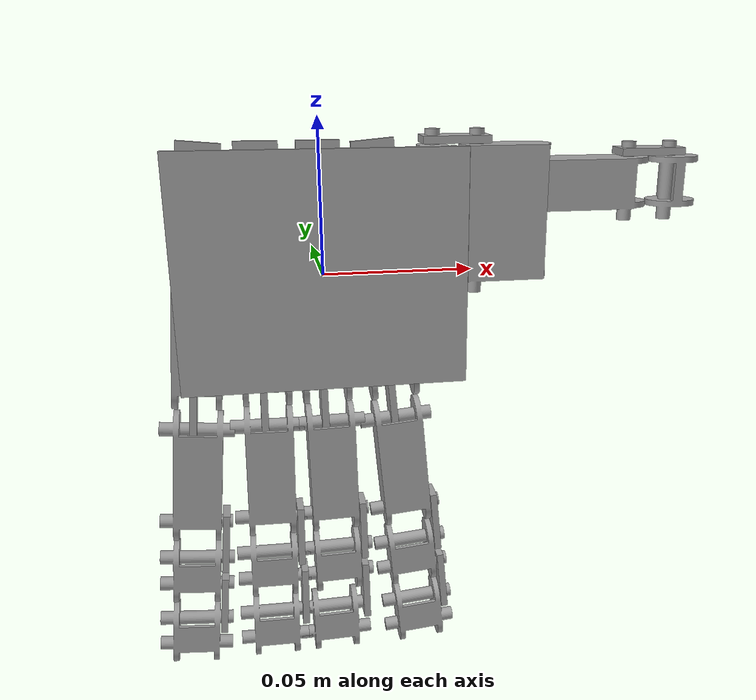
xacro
<?xml version="1.0" ?>
<robot name="hand_final" xmlns:xacro="http://www.ros.org/wiki/xacro">

<xacro:include filename="$(find hand_final_description)/urdf/materials.xacro" />
<xacro:include filename="$(find hand_final_description)/urdf/hand_final.trans" />
<xacro:include filename="$(find hand_final_description)/urdf/hand_final.gazebo" />
<link name="base_link">
  <inertial>
    <origin rpy="0 0 0" xyz="0.0 0.001 0.0"/>
    <mass value="0.123088"/>
    <inertia ixx="6.6e-05" ixy="0.0" ixz="0.0" iyy="0.000164" iyz="-0.0" izz="9.9e-05"/>
  </inertial>
  <visual>
    <origin rpy="0 0 0" xyz="0 0 0"/>
    <geometry>
      <mesh filename="package://hand_final_description/meshes/base_link.stl" scale="0.001 0.001 0.001"/>
    </geometry>
    <material name="steel_satin"/>
  </visual>
  <collision>
    <origin rpy="0 0 0" xyz="0 0 0"/>
    <geometry>
      <mesh filename="package://hand_final_description/meshes/base_link.stl" scale="0.001 0.001 0.001"/>
    </geometry>
  </collision>
</link>

<link name="s_mcp_yaw_link_v1_1">
  <inertial>
    <origin rpy="0 0 0" xyz="-4.6768596833245135e-05 0.0012359787607253239 -0.0005345675075667244"/>
    <mass value="0.011430485562037091"/>
    <inertia ixx="2e-06" ixy="0.0" ixz="-0.0" iyy="3e-06" iyz="0.0" izz="0.0"/>
  </inertial>
  <visual>
    <origin rpy="0 0 0" xyz="0.039 -0.002 -0.0175"/>
    <geometry>
      <mesh filename="package://hand_final_description/meshes/s_mcp_yaw_link_v1_1.stl" scale="0.001 0.001 0.001"/>
    </geometry>
    <material name="steel_satin"/>
  </visual>
  <collision>
    <origin rpy="0 0 0" xyz="0.039 -0.002 -0.0175"/>
    <geometry>
      <mesh filename="package://hand_final_description/meshes/s_mcp_yaw_link_v1_1.stl" scale="0.001 0.001 0.001"/>
    </geometry>
  </collision>
</link>

<link name="s_mcp_pitch_link_v1_1">
  <inertial>
    <origin rpy="0 0 0" xyz="-0.04274093891233175 0.007616616913173875 0.017740872570661995"/>
    <mass value="0.028244047864773934"/>
    <inertia ixx="6e-06" ixy="0.0" ixz="-0.0" iyy="6e-06" iyz="0.0" izz="2e-06"/>
  </inertial>
  <visual>
    <origin rpy="0 0 0" xyz="-0.0 -0.002 0.043"/>
    <geometry>
      <mesh filename="package://hand_final_description/meshes/s_mcp_pitch_link_v1_1.stl" scale="0.001 0.001 0.001"/>
    </geometry>
    <material name="steel_satin"/>
  </visual>
  <collision>
    <origin rpy="0 0 0" xyz="-0.0 -0.002 0.043"/>
    <geometry>
      <mesh filename="package://hand_final_description/meshes/s_mcp_pitch_link_v1_1.stl" scale="0.001 0.001 0.001"/>
    </geometry>
  </collision>
</link>

<link name="connector_v1_1">
  <inertial>
    <origin rpy="0 0 0" xyz="-0.0460411002627318 0.004250000000000006 -0.00563800271492397"/>
    <mass value="0.00374307805216622"/>
    <inertia ixx="0.0" ixy="0.0" ixz="-0.0" iyy="0.0" iyz="0.0" izz="0.0"/>
  </inertial>
  <visual>
    <origin rpy="0 0 0" xyz="-0.0 -0.007 0.043"/>
    <geometry>
      <mesh filename="package://hand_final_description/meshes/connector_v1_1.stl" scale="0.001 0.001 0.001"/>
    </geometry>
    <material name="steel_satin"/>
  </visual>
  <collision>
    <origin rpy="0 0 0" xyz="-0.0 -0.007 0.043"/>
    <geometry>
      <mesh filename="package://hand_final_description/meshes/connector_v1_1.stl" scale="0.001 0.001 0.001"/>
    </geometry>
  </collision>
</link>

<link name="s_pip_pitch_link_v1_1">
  <inertial>
    <origin rpy="0 0 0" xyz="-0.0011870146943421048 -0.0010075159640330691 -0.017965272866855432"/>
    <mass value="0.03418494281236667"/>
    <inertia ixx="8e-06" ixy="0.0" ixz="-0.0" iyy="9e-06" iyz="-0.0" izz="2e-06"/>
  </inertial>
  <visual>
    <origin rpy="0 0 0" xyz="0.04545 -0.01125 0.056218"/>
    <geometry>
      <mesh filename="package://hand_final_description/meshes/s_pip_pitch_link_v1_1.stl" scale="0.001 0.001 0.001"/>
    </geometry>
    <material name="steel_satin"/>
  </visual>
  <collision>
    <origin rpy="0 0 0" xyz="0.04545 -0.01125 0.056218"/>
    <geometry>
      <mesh filename="package://hand_final_description/meshes/s_pip_pitch_link_v1_1.stl" scale="0.001 0.001 0.001"/>
    </geometry>
  </collision>
</link>

<link name="connector_v1_2">
  <inertial>
    <origin rpy="0 0 0" xyz="-0.03803170676576143 0.004250000000000058 -0.057489801230574816"/>
    <mass value="0.00374307805216622"/>
    <inertia ixx="0.0" ixy="-0.0" ixz="-0.0" iyy="0.0" iyz="-0.0" izz="0.0"/>
  </inertial>
  <visual>
    <origin rpy="0 0 0" xyz="0.0005 -0.007 0.043"/>
    <geometry>
      <mesh filename="package://hand_final_description/meshes/connector_v1_2.stl" scale="0.001 0.001 0.001"/>
    </geometry>
    <material name="steel_satin"/>
  </visual>
  <collision>
    <origin rpy="0 0 0" xyz="0.0005 -0.007 0.043"/>
    <geometry>
      <mesh filename="package://hand_final_description/meshes/connector_v1_2.stl" scale="0.001 0.001 0.001"/>
    </geometry>
  </collision>
</link>

<link name="s_dip_link_v1_1">
  <inertial>
    <origin rpy="0 0 0" xyz="-0.011935747474570657 -0.0005341031947518112 -0.004476997951630715"/>
    <mass value="0.019676387057467354"/>
    <inertia ixx="1e-06" ixy="0.0" ixz="0.0" iyy="2e-06" iyz="0.0" izz="1e-06"/>
  </inertial>
  <visual>
    <origin rpy="0 0 0" xyz="0.03794 -0.01125 0.10807"/>
    <geometry>
      <mesh filename="package://hand_final_description/meshes/s_dip_link_v1_1.stl" scale="0.001 0.001 0.001"/>
    </geometry>
    <material name="steel_satin"/>
  </visual>
  <collision>
    <origin rpy="0 0 0" xyz="0.03794 -0.01125 0.10807"/>
    <geometry>
      <mesh filename="package://hand_final_description/meshes/s_dip_link_v1_1.stl" scale="0.001 0.001 0.001"/>
    </geometry>
  </collision>
</link>

<link name="connector_v1_3">
  <inertial>
    <origin rpy="0 0 0" xyz="-0.04079775607720053 0.004250000000000064 -0.1153908633809602"/>
    <mass value="0.00374307805216622"/>
    <inertia ixx="0.0" ixy="0.0" ixz="-0.0" iyy="0.0" iyz="0.0" izz="0.0"/>
  </inertial>
  <visual>
    <origin rpy="0 0 0" xyz="-0.0 -0.007 0.011"/>
    <geometry>
      <mesh filename="package://hand_final_description/meshes/connector_v1_3.stl" scale="0.001 0.001 0.001"/>
    </geometry>
    <material name="steel_satin"/>
  </visual>
  <collision>
    <origin rpy="0 0 0" xyz="-0.0 -0.007 0.011"/>
    <geometry>
      <mesh filename="package://hand_final_description/meshes/connector_v1_3.stl" scale="0.001 0.001 0.001"/>
    </geometry>
  </collision>
</link>

<link name="s_tip_link_v1_1">
  <inertial>
    <origin rpy="0 0 0" xyz="-0.011935796786009763 -0.0005341031947518338 -0.004477060102016067"/>
    <mass value="0.019676387057467354"/>
    <inertia ixx="1e-06" ixy="0.0" ixz="0.0" iyy="2e-06" iyz="0.0" izz="1e-06"/>
  </inertial>
  <visual>
    <origin rpy="0 0 0" xyz="0.040206 -0.01125 0.133971"/>
    <geometry>
      <mesh filename="package://hand_final_description/meshes/s_tip_link_v1_1.stl" scale="0.001 0.001 0.001"/>
    </geometry>
    <material name="steel_satin"/>
  </visual>
  <collision>
    <origin rpy="0 0 0" xyz="0.040206 -0.01125 0.133971"/>
    <geometry>
      <mesh filename="package://hand_final_description/meshes/s_tip_link_v1_1.stl" scale="0.001 0.001 0.001"/>
    </geometry>
  </collision>
</link>

<link name="cmc_link_v4_1">
  <inertial>
    <origin rpy="0 0 0" xyz="-0.00048645427795625945 0.004769447524329839 6.493517695750628e-06"/>
    <mass value="0.018416700517789007"/>
    <inertia ixx="5e-06" ixy="0.0" ixz="-0.0" iyy="5e-06" iyz="-0.0" izz="0.0"/>
  </inertial>
  <visual>
    <origin rpy="0 0 0" xyz="-0.039 -0.002 -0.0175"/>
    <geometry>
      <mesh filename="package://hand_final_description/meshes/cmc_link_v4_1.stl" scale="0.001 0.001 0.001"/>
    </geometry>
    <material name="steel_satin"/>
  </visual>
  <collision>
    <origin rpy="0 0 0" xyz="-0.039 -0.002 -0.0175"/>
    <geometry>
      <mesh filename="package://hand_final_description/meshes/cmc_link_v4_1.stl" scale="0.001 0.001 0.001"/>
    </geometry>
  </collision>
</link>

<link name="t_connector_1_v1_1">
  <inertial>
    <origin rpy="0 0 0" xyz="0.007499999970143861 1.3128640535819969e-11 0.024250000000000008"/>
    <mass value="0.00374307805216622"/>
    <inertia ixx="0.0" ixy="0.0" ixz="0.0" iyy="0.0" iyz="-0.0" izz="0.0"/>
  </inertial>
  <visual>
    <origin rpy="0 0 0" xyz="-0.03825 -0.009 -0.0175"/>
    <geometry>
      <mesh filename="package://hand_final_description/meshes/t_connector_1_v1_1.stl" scale="0.001 0.001 0.001"/>
    </geometry>
    <material name="steel_satin"/>
  </visual>
  <collision>
    <origin rpy="0 0 0" xyz="-0.03825 -0.009 -0.0175"/>
    <geometry>
      <mesh filename="package://hand_final_description/meshes/t_connector_1_v1_1.stl" scale="0.001 0.001 0.001"/>
    </geometry>
  </collision>
</link>

<link name="t_mcp_v5_1">
  <inertial>
    <origin rpy="0 0 0" xyz="0.007807400362975288 -0.0029362898569624957 -0.025333866891557685"/>
    <mass value="0.03943050014537036"/>
    <inertia ixx="1.1e-05" ixy="0.0" ixz="-0.0" iyy="1.3e-05" iyz="-0.0" izz="3e-06"/>
  </inertial>
  <visual>
    <origin rpy="0 0 0" xyz="-0.05325 -0.009 -0.043"/>
    <geometry>
      <mesh filename="package://hand_final_description/meshes/t_mcp_v5_1.stl" scale="0.001 0.001 0.001"/>
    </geometry>
    <material name="steel_satin"/>
  </visual>
  <collision>
    <origin rpy="0 0 0" xyz="-0.05325 -0.009 -0.043"/>
    <geometry>
      <mesh filename="package://hand_final_description/meshes/t_mcp_v5_1.stl" scale="0.001 0.001 0.001"/>
    </geometry>
  </collision>
</link>

<link name="t_pip_link_v5_1">
  <inertial>
    <origin rpy="0 0 0" xyz="0.08450315797168514 0.009190616814845145 0.017499999999997472"/>
    <mass value="0.03216718051096679"/>
    <inertia ixx="2e-06" ixy="-1e-06" ixz="-0.0" iyy="7e-06" iyz="-0.0" izz="6e-06"/>
  </inertial>
  <visual>
    <origin rpy="0 0 0" xyz="-0.01 -0.002 -0.0085"/>
    <geometry>
      <mesh filename="package://hand_final_description/meshes/t_pip_link_v5_1.stl" scale="0.001 0.001 0.001"/>
    </geometry>
    <material name="steel_satin"/>
  </visual>
  <collision>
    <origin rpy="0 0 0" xyz="-0.01 -0.002 -0.0085"/>
    <geometry>
      <mesh filename="package://hand_final_description/meshes/t_pip_link_v5_1.stl" scale="0.001 0.001 0.001"/>
    </geometry>
  </collision>
</link>

<link name="t_connector_2_v1_1">
  <inertial>
    <origin rpy="0 0 0" xyz="0.11644669926025636 0.004946699154229534 0.050749999999999997"/>
    <mass value="0.00374307805216622"/>
    <inertia ixx="0.0" ixy="0.0" ixz="0.0" iyy="0.0" iyz="-0.0" izz="0.0"/>
  </inertial>
  <visual>
    <origin rpy="0 0 0" xyz="-0.0 -0.009 0.0145"/>
    <geometry>
      <mesh filename="package://hand_final_description/meshes/t_connector_2_v1_1.stl" scale="0.001 0.001 0.001"/>
    </geometry>
    <material name="steel_satin"/>
  </visual>
  <collision>
    <origin rpy="0 0 0" xyz="-0.0 -0.009 0.0145"/>
    <geometry>
      <mesh filename="package://hand_final_description/meshes/t_connector_2_v1_1.stl" scale="0.001 0.001 0.001"/>
    </geometry>
  </collision>
</link>

<link name="t_tip_v2_1">
  <inertial>
    <origin rpy="0 0 0" xyz="0.0011409398218715228 -5.272418504998627e-07 -0.011500000000000003"/>
    <mass value="0.011962131611831003"/>
    <inertia ixx="1e-06" ixy="-0.0" ixz="0.0" iyy="1e-06" iyz="-0.0" izz="0.0"/>
  </inertial>
  <visual>
    <origin rpy="0 0 0" xyz="-0.123947 -0.013947 -0.0375"/>
    <geometry>
      <mesh filename="package://hand_final_description/meshes/t_tip_v2_1.stl" scale="0.001 0.001 0.001"/>
    </geometry>
    <material name="steel_satin"/>
  </visual>
  <collision>
    <origin rpy="0 0 0" xyz="-0.123947 -0.013947 -0.0375"/>
    <geometry>
      <mesh filename="package://hand_final_description/meshes/t_tip_v2_1.stl" scale="0.001 0.001 0.001"/>
    </geometry>
  </collision>
</link>

<link name="r_mcp_yaw_link_v1_1">
  <inertial>
    <origin rpy="0 0 0" xyz="-3.17280923756158e-14 0.001235978760725326 -0.0005366094686043502"/>
    <mass value="0.011430485562037091"/>
    <inertia ixx="2e-06" ixy="0.0" ixz="-0.0" iyy="3e-06" iyz="0.0" izz="0.0"/>
  </inertial>
  <visual>
    <origin rpy="0 0 0" xyz="0.0195 -0.002 -0.0175"/>
    <geometry>
      <mesh filename="package://hand_final_description/meshes/r_mcp_yaw_link_v1_1.stl" scale="0.001 0.001 0.001"/>
    </geometry>
    <material name="steel_satin"/>
  </visual>
  <collision>
    <origin rpy="0 0 0" xyz="0.0195 -0.002 -0.0175"/>
    <geometry>
      <mesh filename="package://hand_final_description/meshes/r_mcp_yaw_link_v1_1.stl" scale="0.001 0.001 0.001"/>
    </geometry>
  </collision>
</link>

<link name="r_mcp_pitch_link_v1_1">
  <inertial>
    <origin rpy="0 0 0" xyz="-0.01993495690744278 0.007866616913173878 0.017581335461812227"/>
    <mass value="0.028244047864773934"/>
    <inertia ixx="6e-06" ixy="0.0" ixz="-0.0" iyy="6e-06" iyz="0.0" izz="2e-06"/>
  </inertial>
  <visual>
    <origin rpy="0 0 0" xyz="-0.0 -0.002 0.043"/>
    <geometry>
      <mesh filename="package://hand_final_description/meshes/r_mcp_pitch_link_v1_1.stl" scale="0.001 0.001 0.001"/>
    </geometry>
    <material name="steel_satin"/>
  </visual>
  <collision>
    <origin rpy="0 0 0" xyz="-0.0 -0.002 0.043"/>
    <geometry>
      <mesh filename="package://hand_final_description/meshes/r_mcp_pitch_link_v1_1.stl" scale="0.001 0.001 0.001"/>
    </geometry>
  </collision>
</link>

<link name="r_connector_1_v1_1">
  <inertial>
    <origin rpy="0 0 0" xyz="-0.0215962513306326 0.004500000000000008 -0.005970797677186772"/>
    <mass value="0.00374307805216622"/>
    <inertia ixx="0.0" ixy="0.0" ixz="-0.0" iyy="0.0" iyz="0.0" izz="0.0"/>
  </inertial>
  <visual>
    <origin rpy="0 0 0" xyz="-0.0 -0.007 0.043"/>
    <geometry>
      <mesh filename="package://hand_final_description/meshes/r_connector_1_v1_1.stl" scale="0.001 0.001 0.001"/>
    </geometry>
    <material name="steel_satin"/>
  </visual>
  <collision>
    <origin rpy="0 0 0" xyz="-0.0 -0.007 0.043"/>
    <geometry>
      <mesh filename="package://hand_final_description/meshes/r_connector_1_v1_1.stl" scale="0.001 0.001 0.001"/>
    </geometry>
  </collision>
</link>

<link name="r_pip_pitch_link_v1_1">
  <inertial>
    <origin rpy="0 0 0" xyz="-0.00043169002557639363 -0.0010075159640330796 -0.017995683521112665"/>
    <mass value="0.03418494281236667"/>
    <inertia ixx="8e-06" ixy="0.0" ixz="-0.0" iyy="9e-06" iyz="-0.0" izz="2e-06"/>
  </inertial>
  <visual>
    <origin rpy="0 0 0" xyz="0.020477 -0.0115 0.056491"/>
    <geometry>
      <mesh filename="package://hand_final_description/meshes/r_pip_pitch_link_v1_1.stl" scale="0.001 0.001 0.001"/>
    </geometry>
    <material name="steel_satin"/>
  </visual>
  <collision>
    <origin rpy="0 0 0" xyz="0.020477 -0.0115 0.056491"/>
    <geometry>
      <mesh filename="package://hand_final_description/meshes/r_pip_pitch_link_v1_1.stl" scale="0.001 0.001 0.001"/>
    </geometry>
  </collision>
</link>

<link name="r_connector_2_v1_1">
  <inertial>
    <origin rpy="0 0 0" xyz="-0.010488075564635466 0.0045000000000000205 -0.05716373280419147"/>
    <mass value="0.00374307805216622"/>
    <inertia ixx="0.0" ixy="0.0" ixz="-0.0" iyy="0.0" iyz="0.0" izz="0.0"/>
  </inertial>
  <visual>
    <origin rpy="0 0 0" xyz="0.0005 -0.007 0.043"/>
    <geometry>
      <mesh filename="package://hand_final_description/meshes/r_connector_2_v1_1.stl" scale="0.001 0.001 0.001"/>
    </geometry>
    <material name="steel_satin"/>
  </visual>
  <collision>
    <origin rpy="0 0 0" xyz="0.0005 -0.007 0.043"/>
    <geometry>
      <mesh filename="package://hand_final_description/meshes/r_connector_2_v1_1.stl" scale="0.001 0.001 0.001"/>
    </geometry>
  </collision>
</link>

<link name="r_dip_link_v1_1">
  <inertial>
    <origin rpy="0 0 0" xyz="-0.011594415233927399 -0.0005341031947518234 -0.005298879077883789"/>
    <mass value="0.019676387057467354"/>
    <inertia ixx="1e-06" ixy="0.0" ixz="0.0" iyy="2e-06" iyz="0.0" izz="1e-06"/>
  </inertial>
  <visual>
    <origin rpy="0 0 0" xyz="0.009869 -0.0115 0.107684"/>
    <geometry>
      <mesh filename="package://hand_final_description/meshes/r_dip_link_v1_1.stl" scale="0.001 0.001 0.001"/>
    </geometry>
    <material name="steel_satin"/>
  </visual>
  <collision>
    <origin rpy="0 0 0" xyz="0.009869 -0.0115 0.107684"/>
    <geometry>
      <mesh filename="package://hand_final_description/meshes/r_dip_link_v1_1.stl" scale="0.001 0.001 0.001"/>
    </geometry>
  </collision>
</link>

<link name="r_connector_3_v1_1">
  <inertial>
    <origin rpy="0 0 0" xyz="-0.010441990436848396 0.004500000000000052 -0.11517722528469497"/>
    <mass value="0.00374307805216622"/>
    <inertia ixx="0.0" ixy="0.0" ixz="-0.0" iyy="0.0" iyz="0.0" izz="0.0"/>
  </inertial>
  <visual>
    <origin rpy="0 0 0" xyz="-0.0 -0.007 0.011"/>
    <geometry>
      <mesh filename="package://hand_final_description/meshes/r_connector_3_v1_1.stl" scale="0.001 0.001 0.001"/>
    </geometry>
    <material name="steel_satin"/>
  </visual>
  <collision>
    <origin rpy="0 0 0" xyz="-0.0 -0.007 0.011"/>
    <geometry>
      <mesh filename="package://hand_final_description/meshes/r_connector_3_v1_1.stl" scale="0.001 0.001 0.001"/>
    </geometry>
  </collision>
</link>

<link name="r_tip_link_v1_1">
  <inertial>
    <origin rpy="0 0 0" xyz="-0.012594177801296734 -0.0005341031947518095 -0.00528091915194992"/>
    <mass value="0.019676387057467354"/>
    <inertia ixx="1e-06" ixy="0.0" ixz="0.0" iyy="2e-06" iyz="0.0" izz="1e-06"/>
  </inertial>
  <visual>
    <origin rpy="0 0 0" xyz="0.009323 -0.0115 0.133698"/>
    <geometry>
      <mesh filename="package://hand_final_description/meshes/r_tip_link_v1_1.stl" scale="0.001 0.001 0.001"/>
    </geometry>
    <material name="steel_satin"/>
  </visual>
  <collision>
    <origin rpy="0 0 0" xyz="0.009323 -0.0115 0.133698"/>
    <geometry>
      <mesh filename="package://hand_final_description/meshes/r_tip_link_v1_1.stl" scale="0.001 0.001 0.001"/>
    </geometry>
  </collision>
</link>

<link name="m_mcp_yaw_link_v1_1">
  <inertial>
    <origin rpy="0 0 0" xyz="-3.172582489701302e-14 0.001235978760725326 -0.0005366094686043502"/>
    <mass value="0.011430485562037091"/>
    <inertia ixx="2e-06" ixy="0.0" ixz="-0.0" iyy="3e-06" iyz="0.0" izz="0.0"/>
  </inertial>
  <visual>
    <origin rpy="0 0 0" xyz="-0.0 -0.002 -0.0175"/>
    <geometry>
      <mesh filename="package://hand_final_description/meshes/m_mcp_yaw_link_v1_1.stl" scale="0.001 0.001 0.001"/>
    </geometry>
    <material name="steel_satin"/>
  </visual>
  <collision>
    <origin rpy="0 0 0" xyz="-0.0 -0.002 -0.0175"/>
    <geometry>
      <mesh filename="package://hand_final_description/meshes/m_mcp_yaw_link_v1_1.stl" scale="0.001 0.001 0.001"/>
    </geometry>
  </collision>
</link>

<link name="m_mcp_pitch_link_v1_1">
  <inertial>
    <origin rpy="0 0 0" xyz="0.00043495690743421855 0.007866616913173875 0.017581335461812075"/>
    <mass value="0.028244047864773934"/>
    <inertia ixx="6e-06" ixy="-0.0" ixz="0.0" iyy="6e-06" iyz="0.0" izz="2e-06"/>
  </inertial>
  <visual>
    <origin rpy="0 0 0" xyz="-0.0 -0.002 0.043"/>
    <geometry>
      <mesh filename="package://hand_final_description/meshes/m_mcp_pitch_link_v1_1.stl" scale="0.001 0.001 0.001"/>
    </geometry>
    <material name="steel_satin"/>
  </visual>
  <collision>
    <origin rpy="0 0 0" xyz="-0.0 -0.002 0.043"/>
    <geometry>
      <mesh filename="package://hand_final_description/meshes/m_mcp_pitch_link_v1_1.stl" scale="0.001 0.001 0.001"/>
    </geometry>
  </collision>
</link>

<link name="m_connector_2_v1_1">
  <inertial>
    <origin rpy="0 0 0" xyz="-0.0004033679072583855 0.0045 -0.006014428693279984"/>
    <mass value="0.00374307805216622"/>
    <inertia ixx="0.0" ixy="0.0" ixz="0.0" iyy="0.0" iyz="-0.0" izz="0.0"/>
  </inertial>
  <visual>
    <origin rpy="0 0 0" xyz="-0.0 -0.007 0.043"/>
    <geometry>
      <mesh filename="package://hand_final_description/meshes/m_connector_2_v1_1.stl" scale="0.001 0.001 0.001"/>
    </geometry>
    <material name="steel_satin"/>
  </visual>
  <collision>
    <origin rpy="0 0 0" xyz="-0.0 -0.007 0.043"/>
    <geometry>
      <mesh filename="package://hand_final_description/meshes/m_connector_2_v1_1.stl" scale="0.001 0.001 0.001"/>
    </geometry>
  </collision>
</link>

<link name="m_pip_pitch_link_v1_1">
  <inertial>
    <origin rpy="0 0 0" xyz="0.0006971899754776661 -0.0010075159640330865 -0.0179910492022487"/>
    <mass value="0.03418494281236667"/>
    <inertia ixx="8e-06" ixy="0.0" ixz="0.0" iyy="9e-06" iyz="0.0" izz="2e-06"/>
  </inertial>
  <visual>
    <origin rpy="0 0 0" xyz="-0.000977 -0.0115 0.056491"/>
    <geometry>
      <mesh filename="package://hand_final_description/meshes/m_pip_pitch_link_v1_1.stl" scale="0.001 0.001 0.001"/>
    </geometry>
    <material name="steel_satin"/>
  </visual>
  <collision>
    <origin rpy="0 0 0" xyz="-0.000977 -0.0115 0.056491"/>
    <geometry>
      <mesh filename="package://hand_final_description/meshes/m_pip_pitch_link_v1_1.stl" scale="0.001 0.001 0.001"/>
    </geometry>
  </collision>
</link>

<link name="m_connector_1_v1_1">
  <inertial>
    <origin rpy="0 0 0" xyz="0.012984877162919692 0.004500000000000008 -0.05679723226900847"/>
    <mass value="0.00374307805216622"/>
    <inertia ixx="0.0" ixy="-0.0" ixz="0.0" iyy="0.0" iyz="0.0" izz="0.0"/>
  </inertial>
  <visual>
    <origin rpy="0 0 0" xyz="0.0005 -0.007 0.043"/>
    <geometry>
      <mesh filename="package://hand_final_description/meshes/m_connector_1_v1_1.stl" scale="0.001 0.001 0.001"/>
    </geometry>
    <material name="steel_satin"/>
  </visual>
  <collision>
    <origin rpy="0 0 0" xyz="0.0005 -0.007 0.043"/>
    <geometry>
      <mesh filename="package://hand_final_description/meshes/m_connector_1_v1_1.stl" scale="0.001 0.001 0.001"/>
    </geometry>
  </collision>
</link>

<link name="m_dip_link_v1_1">
  <inertial>
    <origin rpy="0 0 0" xyz="-0.011402699459372364 -0.000534103194751858 -0.005700153547398473"/>
    <mass value="0.019676387057467354"/>
    <inertia ixx="1e-06" ixy="0.0" ixz="-0.0" iyy="2e-06" iyz="0.0" izz="1e-06"/>
  </inertial>
  <visual>
    <origin rpy="0 0 0" xyz="-0.013866 -0.0115 0.107274"/>
    <geometry>
      <mesh filename="package://hand_final_description/meshes/m_dip_link_v1_1.stl" scale="0.001 0.001 0.001"/>
    </geometry>
    <material name="steel_satin"/>
  </visual>
  <collision>
    <origin rpy="0 0 0" xyz="-0.013866 -0.0115 0.107274"/>
    <geometry>
      <mesh filename="package://hand_final_description/meshes/m_dip_link_v1_1.stl" scale="0.001 0.001 0.001"/>
    </geometry>
  </collision>
</link>

<link name="m_connector_3_v1_1">
  <inertial>
    <origin rpy="0 0 0" xyz="0.012938639730289012 0.004500000000000017 -0.11479327234307456"/>
    <mass value="0.00374307805216622"/>
    <inertia ixx="0.0" ixy="-0.0" ixz="0.0" iyy="0.0" iyz="0.0" izz="0.0"/>
  </inertial>
  <visual>
    <origin rpy="0 0 0" xyz="-0.0 -0.007 0.011"/>
    <geometry>
      <mesh filename="package://hand_final_description/meshes/m_connector_3_v1_1.stl" scale="0.001 0.001 0.001"/>
    </geometry>
    <material name="steel_satin"/>
  </visual>
  <collision>
    <origin rpy="0 0 0" xyz="-0.0 -0.007 0.011"/>
    <geometry>
      <mesh filename="package://hand_final_description/meshes/m_connector_3_v1_1.stl" scale="0.001 0.001 0.001"/>
    </geometry>
  </collision>
</link>

<link name="m_tip_link_v1_1">
  <inertial>
    <origin rpy="0 0 0" xyz="-0.01340163228231583 -0.000534103194751865 -0.005735098434339281"/>
    <mass value="0.019676387057467354"/>
    <inertia ixx="1e-06" ixy="0.0" ixz="-0.0" iyy="2e-06" iyz="0.0" izz="1e-06"/>
  </inertial>
  <visual>
    <origin rpy="0 0 0" xyz="-0.014319 -0.0115 0.13327"/>
    <geometry>
      <mesh filename="package://hand_final_description/meshes/m_tip_link_v1_1.stl" scale="0.001 0.001 0.001"/>
    </geometry>
    <material name="steel_satin"/>
  </visual>
  <collision>
    <origin rpy="0 0 0" xyz="-0.014319 -0.0115 0.13327"/>
    <geometry>
      <mesh filename="package://hand_final_description/meshes/m_tip_link_v1_1.stl" scale="0.001 0.001 0.001"/>
    </geometry>
  </collision>
</link>

<link name="i_mcp_yaw_link_v1_1">
  <inertial>
    <origin rpy="0 0 0" xyz="4.676859677003528e-05 0.001235978760725326 -0.0005345675075722547"/>
    <mass value="0.011430485562037091"/>
    <inertia ixx="2e-06" ixy="-0.0" ixz="0.0" iyy="3e-06" iyz="0.0" izz="0.0"/>
  </inertial>
  <visual>
    <origin rpy="0 0 0" xyz="-0.0195 -0.002 -0.0175"/>
    <geometry>
      <mesh filename="package://hand_final_description/meshes/i_mcp_yaw_link_v1_1.stl" scale="0.001 0.001 0.001"/>
    </geometry>
    <material name="steel_satin"/>
  </visual>
  <collision>
    <origin rpy="0 0 0" xyz="-0.0195 -0.002 -0.0175"/>
    <geometry>
      <mesh filename="package://hand_final_description/meshes/i_mcp_yaw_link_v1_1.stl" scale="0.001 0.001 0.001"/>
    </geometry>
  </collision>
</link>

<link name="i_mcp_pitch_link_v1_1">
  <inertial>
    <origin rpy="0 0 0" xyz="0.023240938912323234 0.007866616913173878 0.01774087257066125"/>
    <mass value="0.028244047864773934"/>
    <inertia ixx="6e-06" ixy="-0.0" ixz="0.0" iyy="6e-06" iyz="0.0" izz="2e-06"/>
  </inertial>
  <visual>
    <origin rpy="0 0 0" xyz="-0.0 -0.002 0.043"/>
    <geometry>
      <mesh filename="package://hand_final_description/meshes/i_mcp_pitch_link_v1_1.stl" scale="0.001 0.001 0.001"/>
    </geometry>
    <material name="steel_satin"/>
  </visual>
  <collision>
    <origin rpy="0 0 0" xyz="-0.0 -0.002 0.043"/>
    <geometry>
      <mesh filename="package://hand_final_description/meshes/i_mcp_pitch_link_v1_1.stl" scale="0.001 0.001 0.001"/>
    </geometry>
  </collision>
</link>

<link name="i_connector_1_v1_1">
  <inertial>
    <origin rpy="0 0 0" xyz="0.024050613517502453 0.0045 -0.005855892071793108"/>
    <mass value="0.00374307805216622"/>
    <inertia ixx="0.0" ixy="-0.0" ixz="0.0" iyy="0.0" iyz="0.0" izz="0.0"/>
  </inertial>
  <visual>
    <origin rpy="0 0 0" xyz="-0.0 -0.007 0.043"/>
    <geometry>
      <mesh filename="package://hand_final_description/meshes/i_connector_1_v1_1.stl" scale="0.001 0.001 0.001"/>
    </geometry>
    <material name="steel_satin"/>
  </visual>
  <collision>
    <origin rpy="0 0 0" xyz="-0.0 -0.007 0.043"/>
    <geometry>
      <mesh filename="package://hand_final_description/meshes/i_connector_1_v1_1.stl" scale="0.001 0.001 0.001"/>
    </geometry>
  </collision>
</link>

<link name="i_pip_pitch_link_v1_1">
  <inertial>
    <origin rpy="0 0 0" xyz="0.001451544625967232 -0.0010075159640331264 -0.017942129496674945"/>
    <mass value="0.03418494281236667"/>
    <inertia ixx="8e-06" ixy="0.0" ixz="0.0" iyy="9e-06" iyz="0.0" izz="2e-06"/>
  </inertial>
  <visual>
    <origin rpy="0 0 0" xyz="-0.02595 -0.0115 0.056218"/>
    <geometry>
      <mesh filename="package://hand_final_description/meshes/i_pip_pitch_link_v1_1.stl" scale="0.001 0.001 0.001"/>
    </geometry>
    <material name="steel_satin"/>
  </visual>
  <collision>
    <origin rpy="0 0 0" xyz="-0.02595 -0.0115 0.056218"/>
    <geometry>
      <mesh filename="package://hand_final_description/meshes/i_pip_pitch_link_v1_1.stl" scale="0.001 0.001 0.001"/>
    </geometry>
  </collision>
</link>

<link name="i_connector_2_v1_1">
  <inertial>
    <origin rpy="0 0 0" xyz="0.040451795425688095 0.004499999999999941 -0.05565953063287406"/>
    <mass value="0.00374307805216622"/>
    <inertia ixx="0.0" ixy="0.0" ixz="0.0" iyy="0.0" iyz="0.0" izz="0.0"/>
  </inertial>
  <visual>
    <origin rpy="0 0 0" xyz="0.0005 -0.007 0.043"/>
    <geometry>
      <mesh filename="package://hand_final_description/meshes/i_connector_2_v1_1.stl" scale="0.001 0.001 0.001"/>
    </geometry>
    <material name="steel_satin"/>
  </visual>
  <collision>
    <origin rpy="0 0 0" xyz="0.0005 -0.007 0.043"/>
    <geometry>
      <mesh filename="package://hand_final_description/meshes/i_connector_2_v1_1.stl" scale="0.001 0.001 0.001"/>
    </geometry>
  </collision>
</link>

<link name="i_dip_link_v1_1">
  <inertial>
    <origin rpy="0 0 0" xyz="-0.01097719357645029 -0.0005341031947519448 -0.006481423439827494"/>
    <mass value="0.019676387057467354"/>
    <inertia ixx="1e-06" ixy="0.0" ixz="-0.0" iyy="2e-06" iyz="0.0" izz="1e-06"/>
  </inertial>
  <visual>
    <origin rpy="0 0 0" xyz="-0.041851 -0.0115 0.106022"/>
    <geometry>
      <mesh filename="package://hand_final_description/meshes/i_dip_link_v1_1.stl" scale="0.001 0.001 0.001"/>
    </geometry>
    <material name="steel_satin"/>
  </visual>
  <collision>
    <origin rpy="0 0 0" xyz="-0.041851 -0.0115 0.106022"/>
    <geometry>
      <mesh filename="package://hand_final_description/meshes/i_dip_link_v1_1.stl" scale="0.001 0.001 0.001"/>
    </geometry>
  </collision>
</link>

<link name="i_connector_3_v1_1">
  <inertial>
    <origin rpy="0 0 0" xyz="0.0427159420861731 0.0044999999999999095 -0.11351701491188568"/>
    <mass value="0.00374307805216622"/>
    <inertia ixx="0.0" ixy="0.0" ixz="0.0" iyy="0.0" iyz="-0.0" izz="0.0"/>
  </inertial>
  <visual>
    <origin rpy="0 0 0" xyz="-0.0 -0.007 0.011"/>
    <geometry>
      <mesh filename="package://hand_final_description/meshes/i_connector_3_v1_1.stl" scale="0.001 0.001 0.001"/>
    </geometry>
    <material name="steel_satin"/>
  </visual>
  <collision>
    <origin rpy="0 0 0" xyz="-0.0 -0.007 0.011"/>
    <geometry>
      <mesh filename="package://hand_final_description/meshes/i_connector_3_v1_1.stl" scale="0.001 0.001 0.001"/>
    </geometry>
  </collision>
</link>

<link name="i_tip_link_v1_1">
  <inertial>
    <origin rpy="0 0 0" xyz="-0.01097704691596521 -0.0005341031947519483 -0.006480907718839135"/>
    <mass value="0.019676387057467354"/>
    <inertia ixx="1e-06" ixy="0.0" ixz="-0.0" iyy="2e-06" iyz="0.0" izz="1e-06"/>
  </inertial>
  <visual>
    <origin rpy="0 0 0" xyz="-0.044615 -0.0115 0.13188"/>
    <geometry>
      <mesh filename="package://hand_final_description/meshes/i_tip_link_v1_1.stl" scale="0.001 0.001 0.001"/>
    </geometry>
    <material name="steel_satin"/>
  </visual>
  <collision>
    <origin rpy="0 0 0" xyz="-0.044615 -0.0115 0.13188"/>
    <geometry>
      <mesh filename="package://hand_final_description/meshes/i_tip_link_v1_1.stl" scale="0.001 0.001 0.001"/>
    </geometry>
  </collision>
</link>

<joint name="Rigid1" type="fixed">
  <origin rpy="0 0 0" xyz="-0.039 0.002 0.0175"/>
  <parent link="base_link"/>
  <child link="s_mcp_yaw_link_v1_1"/>
</joint>

<joint name="s_mcp_yaw" type="continuous">
  <origin rpy="0 0 0" xyz="0.039 0.0 -0.0605"/>
  <parent link="s_mcp_yaw_link_v1_1"/>
  <child link="s_mcp_pitch_link_v1_1"/>
  <axis xyz="0.0 1.0 0.0"/>
</joint>

<joint name="s_mcp_pitch" type="continuous">
  <origin rpy="0 0 0" xyz="0.0 0.005 0.0"/>
  <parent link="s_mcp_pitch_link_v1_1"/>
  <child link="connector_v1_1"/>
  <axis xyz="-0.996195 0.0 0.087156"/>
</joint>

<joint name="Rigid4" type="fixed">
  <origin rpy="0 0 0" xyz="-0.04545 0.00425 -0.013218"/>
  <parent link="connector_v1_1"/>
  <child link="s_pip_pitch_link_v1_1"/>
</joint>

<joint name="s_pip_pitch" type="continuous">
  <origin rpy="0 0 0" xyz="0.04495 -0.00425 0.013218"/>
  <parent link="s_pip_pitch_link_v1_1"/>
  <child link="connector_v1_2"/>
  <axis xyz="0.996195 -0.0 -0.087156"/>
</joint>

<joint name="Rigid6" type="fixed">
  <origin rpy="0 0 0" xyz="-0.03744 0.00425 -0.06507"/>
  <parent link="connector_v1_2"/>
  <child link="s_dip_link_v1_1"/>
</joint>

<joint name="s_dip_pitch" type="continuous">
  <origin rpy="0 0 0" xyz="0.03794 -0.00425 0.09707"/>
  <parent link="s_dip_link_v1_1"/>
  <child link="connector_v1_3"/>
  <axis xyz="0.996195 -0.0 -0.087156"/>
</joint>

<joint name="Rigid8" type="fixed">
  <origin rpy="0 0 0" xyz="-0.040206 0.00425 -0.122971"/>
  <parent link="connector_v1_3"/>
  <child link="s_tip_link_v1_1"/>
</joint>

<joint name="Rigid9" type="fixed">
  <origin rpy="0 0 0" xyz="0.039 0.002 0.0175"/>
  <parent link="base_link"/>
  <child link="cmc_link_v4_1"/>
</joint>

<joint name="t_mcp_pitch" type="continuous">
  <origin rpy="0 0 0" xyz="-0.00075 0.007 0.0"/>
  <parent link="cmc_link_v4_1"/>
  <child link="t_connector_1_v1_1"/>
  <axis xyz="0.0 0.0 1.0"/>
</joint>

<joint name="Rigid11" type="fixed">
  <origin rpy="0 0 0" xyz="0.015 0.0 0.0255"/>
  <parent link="t_connector_1_v1_1"/>
  <child link="t_mcp_v5_1"/>
</joint>

<joint name="t_mcp_yaw" type="continuous">
  <origin rpy="0 0 0" xyz="-0.04325 -0.007 -0.0345"/>
  <parent link="t_mcp_v5_1"/>
  <child link="t_pip_link_v5_1"/>
  <axis xyz="0.0 1.0 -0.0"/>
</joint>

<joint name="t_pip_pitch" type="continuous">
  <origin rpy="0 0 0" xyz="-0.01 0.007 -0.023"/>
  <parent link="t_pip_link_v5_1"/>
  <child link="t_connector_2_v1_1"/>
  <axis xyz="0.0 -0.0 1.0"/>
</joint>

<joint name="Rigid16" type="fixed">
  <origin rpy="0 0 0" xyz="0.123947 0.004947 0.052"/>
  <parent link="t_connector_2_v1_1"/>
  <child link="t_tip_v2_1"/>
</joint>

<joint name="Rigid17" type="fixed">
  <origin rpy="0 0 0" xyz="-0.0195 0.002 0.0175"/>
  <parent link="base_link"/>
  <child link="r_mcp_yaw_link_v1_1"/>
</joint>

<joint name="r_mcp_yaw " type="continuous">
  <origin rpy="0 0 0" xyz="0.0195 0.0 -0.0605"/>
  <parent link="r_mcp_yaw_link_v1_1"/>
  <child link="r_mcp_pitch_link_v1_1"/>
  <axis xyz="0.0 1.0 0.0"/>
</joint>

<joint name="r_mcp_pitch " type="continuous">
  <origin rpy="0 0 0" xyz="0.0 0.005 0.0"/>
  <parent link="r_mcp_pitch_link_v1_1"/>
  <child link="r_connector_1_v1_1"/>
  <axis xyz="-0.999848 0.0 0.017452"/>
</joint>

<joint name="rev20" type="fixed">
  <origin rpy="0 0 0" xyz="-0.020477 0.0045 -0.013491"/>
  <parent link="r_connector_1_v1_1"/>
  <child link="r_pip_pitch_link_v1_1"/>
</joint>

<joint name="r_pip_pitch" type="continuous">
  <origin rpy="0 0 0" xyz="0.019977 -0.0045 0.013491"/>
  <parent link="r_pip_pitch_link_v1_1"/>
  <child link="r_connector_2_v1_1"/>
  <axis xyz="0.999848 -0.0 -0.017452"/>
</joint>

<joint name="Rigid22" type="fixed">
  <origin rpy="0 0 0" xyz="-0.009369 0.0045 -0.064684"/>
  <parent link="r_connector_2_v1_1"/>
  <child link="r_dip_link_v1_1"/>
</joint>

<joint name="r_dip_pitch" type="continuous">
  <origin rpy="0 0 0" xyz="0.009869 -0.0045 0.096684"/>
  <parent link="r_dip_link_v1_1"/>
  <child link="r_connector_3_v1_1"/>
  <axis xyz="0.999848 -0.0 -0.017452"/>
</joint>

<joint name="Rigid24" type="fixed">
  <origin rpy="0 0 0" xyz="-0.009323 0.0045 -0.122698"/>
  <parent link="r_connector_3_v1_1"/>
  <child link="r_tip_link_v1_1"/>
</joint>

<joint name="Rigid25" type="fixed">
  <origin rpy="0 0 0" xyz="0.0 0.002 0.0175"/>
  <parent link="base_link"/>
  <child link="m_mcp_yaw_link_v1_1"/>
</joint>

<joint name="m_mcp_yaw" type="continuous">
  <origin rpy="0 0 0" xyz="0.0 0.0 -0.0605"/>
  <parent link="m_mcp_yaw_link_v1_1"/>
  <child link="m_mcp_pitch_link_v1_1"/>
  <axis xyz="0.0 1.0 0.0"/>
</joint>

<joint name="m_mcp_pitch" type="continuous">
  <origin rpy="0 0 0" xyz="0.0 0.005 0.0"/>
  <parent link="m_mcp_pitch_link_v1_1"/>
  <child link="m_connector_2_v1_1"/>
  <axis xyz="-0.999848 0.0 -0.017452"/>
</joint>

<joint name="Rigid28" type="fixed">
  <origin rpy="0 0 0" xyz="0.000977 0.0045 -0.013491"/>
  <parent link="m_connector_2_v1_1"/>
  <child link="m_pip_pitch_link_v1_1"/>
</joint>

<joint name="m_pip_pitch" type="continuous">
  <origin rpy="0 0 0" xyz="-0.001477 -0.0045 0.013491"/>
  <parent link="m_pip_pitch_link_v1_1"/>
  <child link="m_connector_1_v1_1"/>
  <axis xyz="0.999848 0.0 0.017452"/>
</joint>

<joint name="Rigid32" type="fixed">
  <origin rpy="0 0 0" xyz="0.014366 0.0045 -0.064274"/>
  <parent link="m_connector_1_v1_1"/>
  <child link="m_dip_link_v1_1"/>
</joint>

<joint name="m_dip_pitch" type="continuous">
  <origin rpy="0 0 0" xyz="-0.013866 -0.0045 0.096274"/>
  <parent link="m_dip_link_v1_1"/>
  <child link="m_connector_3_v1_1"/>
  <axis xyz="0.999848 -0.0 0.017452"/>
</joint>

<joint name="Rigid34" type="fixed">
  <origin rpy="0 0 0" xyz="0.014319 0.0045 -0.12227"/>
  <parent link="m_connector_3_v1_1"/>
  <child link="m_tip_link_v1_1"/>
</joint>

<joint name="Rigid35" type="fixed">
  <origin rpy="0 0 0" xyz="0.0195 0.002 0.0175"/>
  <parent link="base_link"/>
  <child link="i_mcp_yaw_link_v1_1"/>
</joint>

<joint name="i_mcp_yaw" type="continuous">
  <origin rpy="0 0 0" xyz="-0.0195 0.0 -0.0605"/>
  <parent link="i_mcp_yaw_link_v1_1"/>
  <child link="i_mcp_pitch_link_v1_1"/>
  <axis xyz="0.0 1.0 0.0"/>
</joint>

<joint name="i_mcp_pitch" type="continuous">
  <origin rpy="0 0 0" xyz="0.0 0.005 0.0"/>
  <parent link="i_mcp_pitch_link_v1_1"/>
  <child link="i_connector_1_v1_1"/>
  <axis xyz="-0.996195 0.0 -0.087156"/>
</joint>

<joint name="Rigid38" type="fixed">
  <origin rpy="0 0 0" xyz="0.02595 0.0045 -0.013218"/>
  <parent link="i_connector_1_v1_1"/>
  <child link="i_pip_pitch_link_v1_1"/>
</joint>

<joint name="i_pip_itch" type="continuous">
  <origin rpy="0 0 0" xyz="-0.02645 -0.0045 0.013218"/>
  <parent link="i_pip_pitch_link_v1_1"/>
  <child link="i_connector_2_v1_1"/>
  <axis xyz="0.996195 0.0 0.087156"/>
</joint>

<joint name="Rigid40" type="fixed">
  <origin rpy="0 0 0" xyz="0.042351 0.0045 -0.063022"/>
  <parent link="i_connector_2_v1_1"/>
  <child link="i_dip_link_v1_1"/>
</joint>

<joint name="i_dip_pitch" type="continuous">
  <origin rpy="0 0 0" xyz="-0.041851 -0.0045 0.095022"/>
  <parent link="i_dip_link_v1_1"/>
  <child link="i_connector_3_v1_1"/>
  <axis xyz="0.996195 -0.0 0.087156"/>
</joint>

<joint name="Rigid42" type="fixed">
  <origin rpy="0 0 0" xyz="0.044615 0.0045 -0.12088"/>
  <parent link="i_connector_3_v1_1"/>
  <child link="i_tip_link_v1_1"/>
</joint>

</robot>

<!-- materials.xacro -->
<robot name="hand_final" xmlns:xacro="http://www.ros.org/wiki/xacro" >

<material name="silver_default">
  <color rgba="0.700 0.700 0.700 1.000"/>
</material>
<material name="steel_satin">
  <color rgba="0.6274509803921569 0.6274509803921569 0.6274509803921569 1.0"/>
</material>

</robot>

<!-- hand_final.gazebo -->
<robot name="hand_final" xmlns:xacro="http://www.ros.org/wiki/xacro" >

<xacro:property name="body_color" value="Gazebo/Silver" />

<gazebo>
  <plugin filename="libgazebo_ros_control.so" name="control"/>
</gazebo>
<gazebo reference="base_link">
  <material>${body_color}</material>
  <mu1>0.2</mu1>
  <mu2>0.2</mu2>
  <selfCollide>true</selfCollide>
  <gravity>true</gravity>
</gazebo>

<gazebo reference="s_mcp_yaw_link_v1_1">
  <material>${body_color}</material>
  <mu1>0.2</mu1>
  <mu2>0.2</mu2>
  <selfCollide>true</selfCollide>
</gazebo>

<gazebo reference="s_mcp_pitch_link_v1_1">
  <material>${body_color}</material>
  <mu1>0.2</mu1>
  <mu2>0.2</mu2>
  <selfCollide>true</selfCollide>
</gazebo>

<gazebo reference="connector_v1_1">
  <material>${body_color}</material>
  <mu1>0.2</mu1>
  <mu2>0.2</mu2>
  <selfCollide>true</selfCollide>
</gazebo>

<gazebo reference="s_pip_pitch_link_v1_1">
  <material>${body_color}</material>
  <mu1>0.2</mu1>
  <mu2>0.2</mu2>
  <selfCollide>true</selfCollide>
</gazebo>

<gazebo reference="connector_v1_2">
  <material>${body_color}</material>
  <mu1>0.2</mu1>
  <mu2>0.2</mu2>
  <selfCollide>true</selfCollide>
</gazebo>

<gazebo reference="s_dip_link_v1_1">
  <material>${body_color}</material>
  <mu1>0.2</mu1>
  <mu2>0.2</mu2>
  <selfCollide>true</selfCollide>
</gazebo>

<gazebo reference="connector_v1_3">
  <material>${body_color}</material>
  <mu1>0.2</mu1>
  <mu2>0.2</mu2>
  <selfCollide>true</selfCollide>
</gazebo>

<gazebo reference="s_tip_link_v1_1">
  <material>${body_color}</material>
  <mu1>0.2</mu1>
  <mu2>0.2</mu2>
  <selfCollide>true</selfCollide>
</gazebo>

<gazebo reference="cmc_link_v4_1">
  <material>${body_color}</material>
  <mu1>0.2</mu1>
  <mu2>0.2</mu2>
  <selfCollide>true</selfCollide>
</gazebo>

<gazebo reference="t_connector_1_v1_1">
  <material>${body_color}</material>
  <mu1>0.2</mu1>
  <mu2>0.2</mu2>
  <selfCollide>true</selfCollide>
</gazebo>

<gazebo reference="t_mcp_v5_1">
  <material>${body_color}</material>
  <mu1>0.2</mu1>
  <mu2>0.2</mu2>
  <selfCollide>true</selfCollide>
</gazebo>

<gazebo reference="t_pip_link_v5_1">
  <material>${body_color}</material>
  <mu1>0.2</mu1>
  <mu2>0.2</mu2>
  <selfCollide>true</selfCollide>
</gazebo>

<gazebo reference="t_connector_2_v1_1">
  <material>${body_color}</material>
  <mu1>0.2</mu1>
  <mu2>0.2</mu2>
  <selfCollide>true</selfCollide>
</gazebo>

<gazebo reference="t_tip_v2_1">
  <material>${body_color}</material>
  <mu1>0.2</mu1>
  <mu2>0.2</mu2>
  <selfCollide>true</selfCollide>
</gazebo>

<gazebo reference="r_mcp_yaw_link_v1_1">
  <material>${body_color}</material>
  <mu1>0.2</mu1>
  <mu2>0.2</mu2>
  <selfCollide>true</selfCollide>
</gazebo>

<gazebo reference="r_mcp_pitch_link_v1_1">
  <material>${body_color}</material>
  <mu1>0.2</mu1>
  <mu2>0.2</mu2>
  <selfCollide>true</selfCollide>
</gazebo>

<gazebo reference="r_connector_1_v1_1">
  <material>${body_color}</material>
  <mu1>0.2</mu1>
  <mu2>0.2</mu2>
  <selfCollide>true</selfCollide>
</gazebo>

<gazebo reference="r_pip_pitch_link_v1_1">
  <material>${body_color}</material>
  <mu1>0.2</mu1>
  <mu2>0.2</mu2>
  <selfCollide>true</selfCollide>
</gazebo>

<gazebo reference="r_connector_2_v1_1">
  <material>${body_color}</material>
  <mu1>0.2</mu1>
  <mu2>0.2</mu2>
  <selfCollide>true</selfCollide>
</gazebo>

<gazebo reference="r_dip_link_v1_1">
  <material>${body_color}</material>
  <mu1>0.2</mu1>
  <mu2>0.2</mu2>
  <selfCollide>true</selfCollide>
</gazebo>

<gazebo reference="r_connector_3_v1_1">
  <material>${body_color}</material>
  <mu1>0.2</mu1>
  <mu2>0.2</mu2>
  <selfCollide>true</selfCollide>
</gazebo>

<gazebo reference="r_tip_link_v1_1">
  <material>${body_color}</material>
  <mu1>0.2</mu1>
  <mu2>0.2</mu2>
  <selfCollide>true</selfCollide>
</gazebo>

<gazebo reference="m_mcp_yaw_link_v1_1">
  <material>${body_color}</material>
  <mu1>0.2</mu1>
  <mu2>0.2</mu2>
  <selfCollide>true</selfCollide>
</gazebo>

<gazebo reference="m_mcp_pitch_link_v1_1">
  <material>${body_color}</material>
  <mu1>0.2</mu1>
  <mu2>0.2</mu2>
  <selfCollide>true</selfCollide>
</gazebo>

<gazebo reference="m_connector_2_v1_1">
  <material>${body_color}</material>
  <mu1>0.2</mu1>
  <mu2>0.2</mu2>
  <selfCollide>true</selfCollide>
</gazebo>

<gazebo reference="m_pip_pitch_link_v1_1">
  <material>${body_color}</material>
  <mu1>0.2</mu1>
  <mu2>0.2</mu2>
  <selfCollide>true</selfCollide>
</gazebo>

<gazebo reference="m_connector_1_v1_1">
  <material>${body_color}</material>
  <mu1>0.2</mu1>
  <mu2>0.2</mu2>
  <selfCollide>true</selfCollide>
</gazebo>

<gazebo reference="m_dip_link_v1_1">
  <material>${body_color}</material>
  <mu1>0.2</mu1>
  <mu2>0.2</mu2>
  <selfCollide>true</selfCollide>
</gazebo>

<gazebo reference="m_connector_3_v1_1">
  <material>${body_color}</material>
  <mu1>0.2</mu1>
  <mu2>0.2</mu2>
  <selfCollide>true</selfCollide>
</gazebo>

<gazebo reference="m_tip_link_v1_1">
  <material>${body_color}</material>
  <mu1>0.2</mu1>
  <mu2>0.2</mu2>
  <selfCollide>true</selfCollide>
</gazebo>

<gazebo reference="i_mcp_yaw_link_v1_1">
  <material>${body_color}</material>
  <mu1>0.2</mu1>
  <mu2>0.2</mu2>
  <selfCollide>true</selfCollide>
</gazebo>

<gazebo reference="i_mcp_pitch_link_v1_1">
  <material>${body_color}</material>
  <mu1>0.2</mu1>
  <mu2>0.2</mu2>
  <selfCollide>true</selfCollide>
</gazebo>

<gazebo reference="i_connector_1_v1_1">
  <material>${body_color}</material>
  <mu1>0.2</mu1>
  <mu2>0.2</mu2>
  <selfCollide>true</selfCollide>
</gazebo>

<gazebo reference="i_pip_pitch_link_v1_1">
  <material>${body_color}</material>
  <mu1>0.2</mu1>
  <mu2>0.2</mu2>
  <selfCollide>true</selfCollide>
</gazebo>

<gazebo reference="i_connector_2_v1_1">
  <material>${body_color}</material>
  <mu1>0.2</mu1>
  <mu2>0.2</mu2>
  <selfCollide>true</selfCollide>
</gazebo>

<gazebo reference="i_dip_link_v1_1">
  <material>${body_color}</material>
  <mu1>0.2</mu1>
  <mu2>0.2</mu2>
  <selfCollide>true</selfCollide>
</gazebo>

<gazebo reference="i_connector_3_v1_1">
  <material>${body_color}</material>
  <mu1>0.2</mu1>
  <mu2>0.2</mu2>
  <selfCollide>true</selfCollide>
</gazebo>

<gazebo reference="i_tip_link_v1_1">
  <material>${body_color}</material>
  <mu1>0.2</mu1>
  <mu2>0.2</mu2>
  <selfCollide>true</selfCollide>
</gazebo>

</robot>
